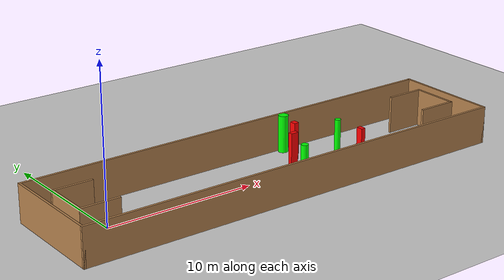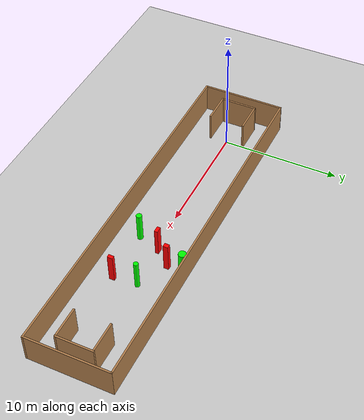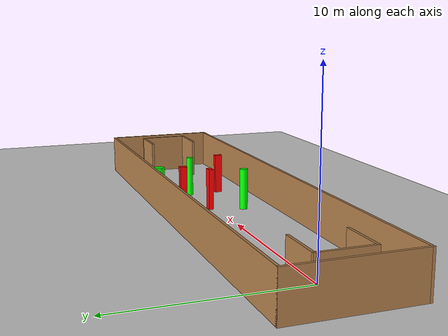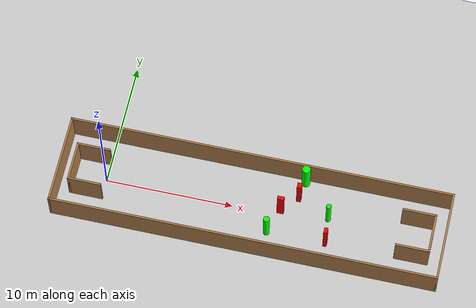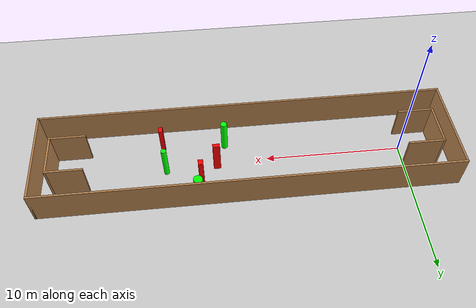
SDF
<sdf version="1.7">
 <world name="default">
  <light name="sun" type="directional">
   <pose>0 0 10 0 -0 0</pose>
   <diffuse>0.8 0.8 0.8 1</diffuse>
   <specular>0.2 0.2 0.2 1</specular>
   <attenuation>
    <range>1000</range>
    <constant>0.9</constant>
    <linear>0.01</linear>
    <quadratic>0.001</quadratic>
   </attenuation>
   <direction>-0.5 0.1 -0.9</direction>
   <spot><inner_angle>0</inner_angle><outer_angle>0</outer_angle><falloff>0</falloff></spot>
  </light>
  <model name="ground_plane">
   <static>1</static>
   <link name="link">
    <collision name="collision">
     <geometry><plane><normal>0 0 1</normal><size>100 100</size></plane></geometry>
     <surface>
      <contact><collide_bitmask>65535</collide_bitmask></contact>
      <friction><ode><mu>100</mu><mu2>50</mu2></ode></friction>
     </surface>
    </collision>
    <visual name="visual">
     <cast_shadows>0</cast_shadows>
     <geometry><plane><normal>0 0 1</normal><size>100 100</size></plane></geometry>
     <material>
      <script><uri>file://media/materials/scripts/gazebo.material</uri><name>Gazebo/Grey</name></script>
     </material>
    </visual>
   </link>
  </model>
  <gravity>0 0 -9.8</gravity>
  <magnetic_field>6e-06 2.3e-05 -4.2e-05</magnetic_field>
  <atmosphere type="adiabatic"/>
  <physics type="ode">
   <max_step_size>0.001</max_step_size>
   <real_time_factor>1</real_time_factor>
   <real_time_update_rate>1000</real_time_update_rate>
  </physics>
  <scene><ambient>0.4 0.4 0.4 1</ambient><background>0.7 0.7 0.7 1</background><shadows>1</shadows></scene>
  <spherical_coordinates>
   <surface_model>EARTH_WGS84</surface_model>
   <latitude_deg>0</latitude_deg>
   <longitude_deg>0</longitude_deg>
   <elevation>0</elevation>
   <heading_deg>0</heading_deg>
  </spherical_coordinates>
  <model name="my_base_walls">
   <link name="Wall_0">
    <collision name="Wall_0_Collision">
     <geometry><box><size>7.15 0.15 2.5</size></box></geometry>
     <pose>0 0 1.25 0 -0 0</pose>
    </collision>
    <visual name="Wall_0_Visual">
     <pose>0 0 1.25 0 -0 0</pose>
     <geometry><box><size>7.15 0.15 2.5</size></box></geometry>
     <material>
      <script><uri>file://media/materials/scripts/gazebo.material</uri><name>Gazebo/Wood</name></script>
      <ambient>1 1 1 1</ambient>
     </material>
     <meta><layer>0</layer></meta>
    </visual>
    <pose>-15 0 0 0 -0 1.5708</pose>
   </link>
   <link name="Wall_10">
    <collision name="Wall_10_Collision">
     <geometry><box><size>2.65 0.15 2.5</size></box></geometry>
     <pose>0 0 1.25 0 -0 0</pose>
    </collision>
    <visual name="Wall_10_Visual">
     <pose>0 0 1.25 0 -0 0</pose>
     <geometry><box><size>2.65 0.15 2.5</size></box></geometry>
     <material>
      <script><uri>file://media/materials/scripts/gazebo.material</uri><name>Gazebo/Wood</name></script>
      <ambient>1 1 1 1</ambient>
     </material>
     <meta><layer>0</layer></meta>
    </visual>
    <pose>-12.75 -1.5 0 0 -0 0</pose>
   </link>
   <link name="Wall_12">
    <collision name="Wall_12_Collision">
     <geometry><box><size>2.65 0.15 2.5</size></box></geometry>
     <pose>0 0 1.25 0 -0 0</pose>
    </collision>
    <visual name="Wall_12_Visual">
     <pose>0 0 1.25 0 -0 0</pose>
     <geometry><box><size>2.65 0.15 2.5</size></box></geometry>
     <material>
      <script><uri>file://media/materials/scripts/gazebo.material</uri><name>Gazebo/Wood</name></script>
      <ambient>1 1 1 1</ambient>
     </material>
     <meta><layer>0</layer></meta>
    </visual>
    <pose>-12.75 1.5 0 0 -0 0</pose>
   </link>
   <link name="Wall_14">
    <collision name="Wall_14_Collision">
     <geometry><box><size>3.15 0.15 2.5</size></box></geometry>
     <pose>0 0 1.25 0 -0 0</pose>
    </collision>
    <visual name="Wall_14_Visual">
     <pose>0 0 1.25 0 -0 0</pose>
     <geometry><box><size>3.15 0.15 2.5</size></box></geometry>
     <material>
      <script><uri>file://media/materials/scripts/gazebo.material</uri><name>Gazebo/Wood</name></script>
      <ambient>1 1 1 1</ambient>
     </material>
     <meta><layer>0</layer></meta>
    </visual>
    <pose>14 0 0 0 -0 -1.5708</pose>
   </link>
   <link name="Wall_15">
    <collision name="Wall_15_Collision">
     <geometry><box><size>2.65 0.15 2.5</size></box></geometry>
     <pose>0 0 1.25 0 -0 0</pose>
    </collision>
    <visual name="Wall_15_Visual">
     <pose>0 0 1.25 0 -0 0</pose>
     <geometry><box><size>2.65 0.15 2.5</size></box></geometry>
     <material>
      <script><uri>file://media/materials/scripts/gazebo.material</uri><name>Gazebo/Wood</name></script>
      <ambient>1 1 1 1</ambient>
     </material>
     <meta><layer>0</layer></meta>
    </visual>
    <pose>12.75 -1.5 0 0 -0 3.14159</pose>
   </link>
   <link name="Wall_17">
    <collision name="Wall_17_Collision">
     <geometry><box><size>2.65 0.15 2.5</size></box></geometry>
     <pose>0 0 1.25 0 -0 0</pose>
    </collision>
    <visual name="Wall_17_Visual">
     <pose>0 0 1.25 0 -0 0</pose>
     <geometry><box><size>2.65 0.15 2.5</size></box></geometry>
     <material>
      <script><uri>file://media/materials/scripts/gazebo.material</uri><name>Gazebo/Wood</name></script>
      <ambient>1 1 1 1</ambient>
     </material>
     <meta><layer>0</layer></meta>
    </visual>
    <pose>12.75 1.5 0 0 -0 3.14159</pose>
   </link>
   <link name="Wall_2">
    <collision name="Wall_2_Collision">
     <geometry><box><size>30.15 0.15 2.5</size></box></geometry>
     <pose>0 0 1.25 0 -0 0</pose>
    </collision>
    <visual name="Wall_2_Visual">
     <pose>0 0 1.25 0 -0 0</pose>
     <geometry><box><size>30.15 0.15 2.5</size></box></geometry>
     <material>
      <script><uri>file://media/materials/scripts/gazebo.material</uri><name>Gazebo/Wood</name></script>
      <ambient>1 1 1 1</ambient>
     </material>
     <meta><layer>0</layer></meta>
    </visual>
    <pose>-0 -3.5 0 0 -0 0</pose>
   </link>
   <link name="Wall_4">
    <collision name="Wall_4_Collision">
     <geometry><box><size>30.15 0.15 2.5</size></box></geometry>
     <pose>0 0 1.25 0 -0 0</pose>
    </collision>
    <visual name="Wall_4_Visual">
     <pose>0 0 1.25 0 -0 0</pose>
     <geometry><box><size>30.15 0.15 2.5</size></box></geometry>
     <material>
      <script><uri>file://media/materials/scripts/gazebo.material</uri><name>Gazebo/Wood</name></script>
      <ambient>1 1 1 1</ambient>
     </material>
     <meta><layer>0</layer></meta>
    </visual>
    <pose>-0 3.5 0 0 -0 0</pose>
   </link>
   <link name="Wall_6">
    <collision name="Wall_6_Collision">
     <geometry><box><size>7.15 0.15 2.5</size></box></geometry>
     <pose>0 0 1.25 0 -0 0</pose>
    </collision>
    <visual name="Wall_6_Visual">
     <pose>0 0 1.25 0 -0 0</pose>
     <geometry><box><size>7.15 0.15 2.5</size></box></geometry>
     <material>
      <script><uri>file://media/materials/scripts/gazebo.material</uri><name>Gazebo/Wood</name></script>
      <ambient>1 1 1 1</ambient>
     </material>
     <meta><layer>0</layer></meta>
    </visual>
    <pose>15 0 0 0 -0 -1.5708</pose>
   </link>
   <link name="Wall_9">
    <collision name="Wall_9_Collision">
     <geometry><box><size>3.15 0.15 2.5</size></box></geometry>
     <pose>0 0 1.25 0 -0 0</pose>
    </collision>
    <visual name="Wall_9_Visual">
     <pose>0 0 1.25 0 -0 0</pose>
     <geometry><box><size>3.15 0.15 2.5</size></box></geometry>
     <material>
      <script><uri>file://media/materials/scripts/gazebo.material</uri><name>Gazebo/Wood</name></script>
      <ambient>1 1 1 1</ambient>
     </material>
     <meta><layer>0</layer></meta>
    </visual>
    <pose>-14 0 0 0 -0 -1.5708</pose>
   </link>
   <static>1</static>
   <pose>11.5 0 0 0 -0 0</pose>
  </model>
  <model name="cylinder1">
   <static>1</static>
   <link name="link">
    <inertial>
     <mass>1</mass>
     <inertia><ixx>0.5</ixx><ixy>0</ixy><ixz>0</ixz><iyy>0.5</iyy><iyz>0</iyz><izz>1</izz></inertia>
    </inertial>
    <collision name="collision">
     <geometry><cylinder><radius>0.3246791499462973</radius><length>2.5</length></cylinder></geometry>
    </collision>
    <visual name="visual">
     <geometry><cylinder><radius>0.3246791499462973</radius><length>2.5</length></cylinder></geometry>
     <material>
      <ambient>0 1 0 1</ambient>
      <diffuse>0 1 0 1</diffuse>
      <specular>0.1 0.1 0.1 1</specular>
      <emissive>0 0 0 0</emissive>
     </material>
    </visual>
   </link>
   <pose>15.124690668899156 3.161707398224096 1.25 0 0 0</pose>
  </model>
  <model name="cylinder2">
   <static>1</static>
   <link name="link">
    <inertial>
     <mass>1</mass>
     <inertia><ixx>0.5</ixx><ixy>0</ixy><ixz>0</ixz><iyy>0.5</iyy><iyz>0</iyz><izz>1</izz></inertia>
    </inertial>
    <collision name="collision">
     <geometry><cylinder><radius>0.19629738330975355</radius><length>2.5</length></cylinder></geometry>
    </collision>
    <visual name="visual">
     <geometry><cylinder><radius>0.19629738330975355</radius><length>2.5</length></cylinder></geometry>
     <material>
      <ambient>0 1 0 1</ambient>
      <diffuse>0 1 0 1</diffuse>
      <specular>0.1 0.1 0.1 1</specular>
      <emissive>0 0 0 0</emissive>
     </material>
    </visual>
   </link>
   <pose>17.422295024552604 0.4856729561135924 1.25 0 0 0</pose>
  </model>
  <model name="cylinder3">
   <static>1</static>
   <link name="link">
    <inertial>
     <mass>1</mass>
     <inertia><ixx>0.5</ixx><ixy>0</ixy><ixz>0</ixz><iyy>0.5</iyy><iyz>0</iyz><izz>1</izz></inertia>
    </inertial>
    <collision name="collision">
     <geometry><cylinder><radius>0.23677564967912323</radius><length>2.5</length></cylinder></geometry>
    </collision>
    <visual name="visual">
     <geometry><cylinder><radius>0.23677564967912323</radius><length>2.5</length></cylinder></geometry>
     <material>
      <ambient>0 1 0 1</ambient>
      <diffuse>0 1 0 1</diffuse>
      <specular>0.1 0.1 0.1 1</specular>
      <emissive>0 0 0 0</emissive>
     </material>
    </visual>
   </link>
   <pose>13.024783159150102 -1.5820297388009132 1.25 0 0 0</pose>
  </model>
  <model name="box1">
   <static>1</static>
   <link name="link">
    <inertial>
     <mass>1</mass>
     <inertia><ixx>0.083</ixx><ixy>0</ixy><ixz>0</ixz><iyy>0.083</iyy><iyz>0</iyz><izz>0.083</izz></inertia>
    </inertial>
    <collision name="collision">
     <geometry><box><size>0.29249017800636723 0.4525017566261213 2.5</size></box></geometry>
    </collision>
    <visual name="visual">
     <geometry><box><size>0.29249017800636723 0.4525017566261213 2.5</size></box></geometry>
     <material>
      <ambient>1 0 0 1</ambient>
      <diffuse>1 0 0 1</diffuse>
      <specular>0.1 0.1 0.1 1</specular>
      <emissive>0 0 0 0</emissive>
     </material>
    </visual>
    <sensor name="my_contact" type="contact">
     <contact><collision>box_collision</collision><topic>__default_topic__</topic></contact>
    </sensor>
   </link>
   <pose>17.604273400534108 -1.532115609350861 1.25 0 0 0</pose>
  </model>
  <model name="box2">
   <static>1</static>
   <link name="link">
    <inertial>
     <mass>1</mass>
     <inertia><ixx>0.083</ixx><ixy>0</ixy><ixz>0</ixz><iyy>0.083</iyy><iyz>0</iyz><izz>0.083</izz></inertia>
    </inertial>
    <collision name="collision">
     <geometry><box><size>0.519541329771577 0.28391297804847676 2.5</size></box></geometry>
    </collision>
    <visual name="visual">
     <geometry><box><size>0.519541329771577 0.28391297804847676 2.5</size></box></geometry>
     <material>
      <ambient>1 0 0 1</ambient>
      <diffuse>1 0 0 1</diffuse>
      <specular>0.1 0.1 0.1 1</specular>
      <emissive>0 0 0 0</emissive>
     </material>
    </visual>
    <sensor name="my_contact" type="contact">
     <contact><collision>box_collision</collision><topic>__default_topic__</topic></contact>
    </sensor>
   </link>
   <pose>13.711988000897906 0.36123405850136514 1.25 0 0 0</pose>
  </model>
  <model name="box3">
   <static>1</static>
   <link name="link">
    <inertial>
     <mass>1</mass>
     <inertia><ixx>0.083</ixx><ixy>0</ixy><ixz>0</ixz><iyy>0.083</iyy><iyz>0</iyz><izz>0.083</izz></inertia>
    </inertial>
    <collision name="collision">
     <geometry><box><size>0.3466885002823176 0.4213815877208504 2.5</size></box></geometry>
    </collision>
    <visual name="visual">
     <geometry><box><size>0.3466885002823176 0.4213815877208504 2.5</size></box></geometry>
     <material>
      <ambient>1 0 0 1</ambient>
      <diffuse>1 0 0 1</diffuse>
      <specular>0.1 0.1 0.1 1</specular>
      <emissive>0 0 0 0</emissive>
     </material>
    </visual>
    <sensor name="my_contact" type="contact">
     <contact><collision>box_collision</collision><topic>__default_topic__</topic></contact>
    </sensor>
   </link>
   <pose>14.887302830408707 1.7150218306582152 1.25 0 0 0</pose>
  </model>
 </world>
</sdf>
